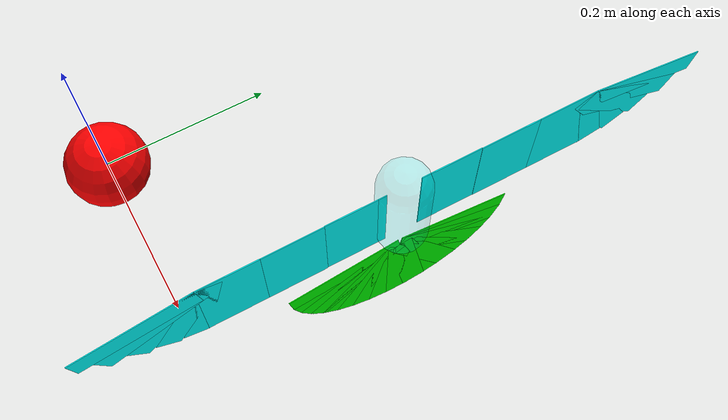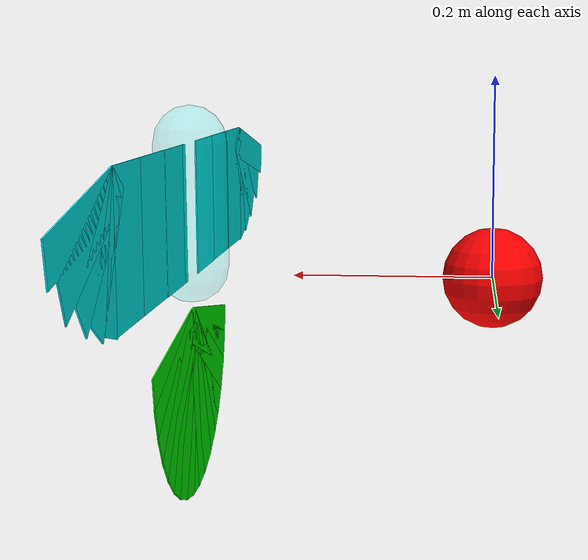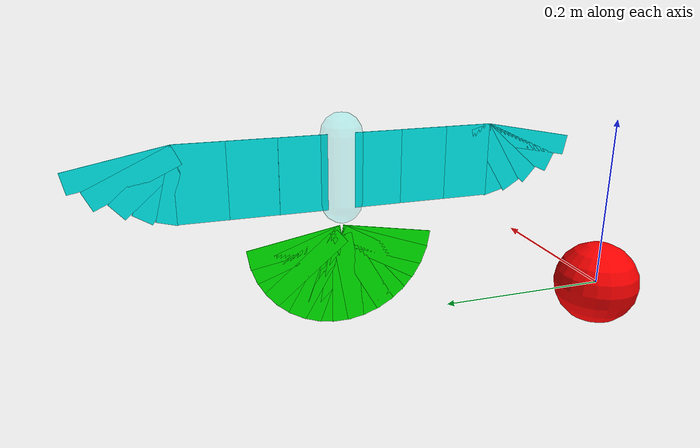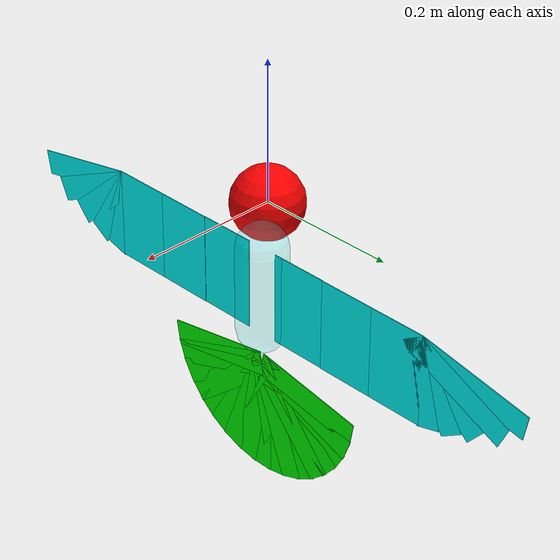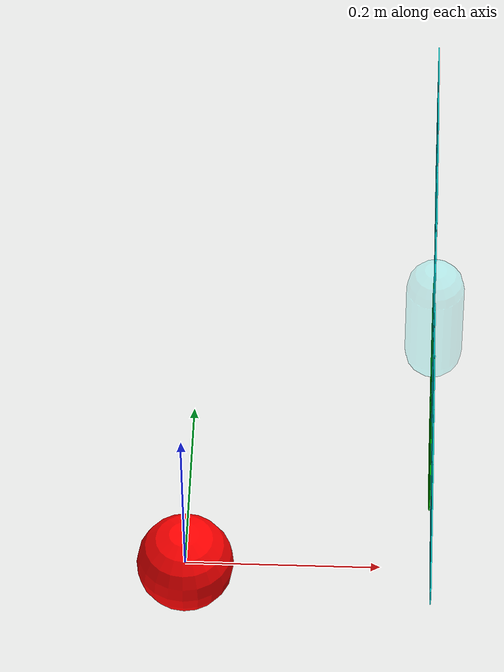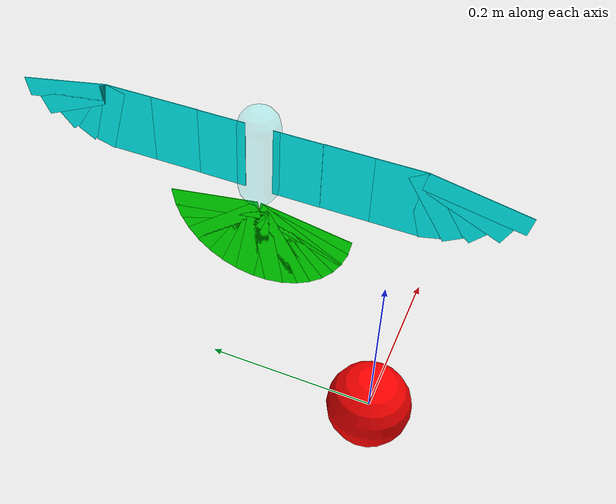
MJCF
<mujoco>
    <include file="pigeon.xml"/>
    <option timestep="0.01" integrator="RK4" gravity="0 0 -5" density="1.2" viscosity="0.00002" noslip_iterations="3" wind="0.0 0.0 0.0"/>

    <worldbody>
        <geom name="ground" type="plane" size="2 1.5 0.1" pos="2 1.5 -100" rgba="1 1 1 .3"/>
    </worldbody>

</mujoco>

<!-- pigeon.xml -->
<mujoco>

    <worldbody>
        <body name="base" pos=".25 .25 .15" euler="0 90 0">
            <joint type="slide" axis="0 0 1" armature="0.00001"/>
            <joint type="slide" axis="1 0 0" armature="0.00001"/>
            <joint type="slide" axis="0 1 0" armature="0.00001"/>
            <joint type="hinge" axis="0 1 0" armature="0.00001"/>
            <joint type="hinge" axis="1 0 0" armature="0.00001"/>
            <joint type="hinge" axis="0 0 1" armature="0.00001"/>
            <geom type="capsule" size=".03" fromto="0 0 0 .1 0 0"
            mass=".05" rgba="0 1 1 .2"/>
            <body name="wing_1_1" pos="0 .02 0" gravcomp="1">
                <joint name="AoA" axis="0 1 0" armature="1"/>
                <joint name="sweep_angle" axis="0 0 1" armature="1"/>
                <joint name="flap_angle" axis="1 0 0" armature="1"/>
                <geom type="box" size=".055 .035 .0005" pos=".055 .035 0"
                    mass=".001" contype="0" conaffinity="0" rgba="0 1 1 1"/>
                <body name="wing_1_2" pos="0 .07 0" gravcomp="1">
                    <geom type="box" size=".055 .035 .0005" pos=".055 .035 .0005"
                        mass=".001" contype="0" conaffinity="0" rgba="0 1 1 1"/>
                    <body name="wing_1_3" pos="0 .07 0" gravcomp="1">
                        <geom type="box" size=".055 .035 .0005" pos=".055 .035 .0005"
                            mass=".001" contype="0" conaffinity="0" rgba="0 1 1 1"/>
                        <body name="wing_1_4" pos="0 .07 0" euler="0 0 15" gravcomp="1">
                            <geom type="box" size=".0535 .015 .0005" pos=".0535 -.015 .0005"
                                mass=".0002" contype="0" conaffinity="0" rgba="0 1 1 1"/>
                            <body name="wing_1_5" pos="0 0 0" euler="0 0 17" gravcomp="1">
                                <geom type="box" size=".0535 .015 .0005" pos=".0535 -.015 .0005"
                                    mass=".0002" contype="0" conaffinity="0" rgba="0 1 1 1"/>
                                <body name="wing_1_6" pos="0 0 0" euler="0 0 17" gravcomp="1">
                                    <geom type="box" size=".056 .015 .0005" pos=".056 -.015 .0005"
                                        mass=".0002" contype="0" conaffinity="0" rgba="0 1 1 1"/>
                                    <body name="wing_1_7" pos="0 0 0" euler="0 0 16" gravcomp="1">
                                        <geom type="box" size=".0635 .015 .0005" pos=".0635 -.015 .0005"
                                            mass=".0002" contype="0" conaffinity="0" rgba="0 1 1 1"/>
                                        <body name="wing_1_8" pos="0 0 0" euler="0 0 14" gravcomp="1">
                                            <geom type="box" size=".07 .015 .0005" pos=".07 -.015 .0005"
                                                mass=".0002" contype="0" conaffinity="0" rgba="0 1 1 1"/>
                                        </body>
                                    </body>
                                </body>
                            </body>
                        </body>
                    </body>
                </body>
            </body>

            <body name="wing_2_1" pos="0 -.02 0" gravcomp="1">
                <joint name="AoA2" axis="0 1 0"  armature="1"/>
                <joint name="sweep_angle2" axis="0 0 1"  armature="1"/>
                <joint name="flap_angle2" axis="1 0 0"  armature="1"/>
                <geom type="box" size=".055 .035 .0005" pos=".055 -.035 0"
                    mass=".001" contype="0" conaffinity="0" rgba="0 1 1 1"/>
                <body name="wing_2_2" pos="0 -.07 0" gravcomp="1">
                    <geom type="box" size=".055 .035 .0005" pos=".055 -.035 .0005"
                        mass=".001" contype="0" conaffinity="0" rgba="0 1 1 1"/>
                    <body name="wing_2_3" pos="0 -.07 0" gravcomp="1">
                        <geom type="box" size=".055 .035 .0005" pos=".055 -.035 .0005"
                            mass=".001" contype="0" conaffinity="0" rgba="0 1 1 1"/>
                        <body name="wing_2_4" pos="0 -.07 0" euler="0 0 -15" gravcomp="1">
                            <geom type="box" size=".0535 .015 .0005" pos=".0535 .015 .0005"
                                mass=".0002" contype="0" conaffinity="0" rgba="0 1 1 1"/>
                            <body name="wing_2_5" pos="0 0 0" euler="0 0 -17" gravcomp="1">
                                <geom type="box" size=".0535 .015 .0005" pos=".0535 .015 .0005"
                                    mass=".0002" contype="0" conaffinity="0" rgba="0 1 1 1"/>
                                <body name="wing_2_6" pos="0 0 0" euler="0 0 -17" gravcomp="1">
                                    <geom type="box" size=".056 .015 .0005" pos=".056 .015 .0005"
                                        mass=".0002" contype="0" conaffinity="0" rgba="0 1 1 1"/>
                                    <body name="wing_2_7" pos="0 0 0" euler="0 0 -16" gravcomp="1">
                                        <geom type="box" size=".0635 .015 .0005" pos=".0635 .015 .0005"
                                            mass=".0002" contype="0" conaffinity="0" rgba="0 1 1 1"/>
                                        <body name="wing_2_8" pos="0 0 0" euler="0 0 -14" gravcomp="1">
                                            <geom type="box" size=".07 .015 .0005" pos=".07 .015 .0005"
                                                mass=".0002" contype="0" conaffinity="0" rgba="0 1 1 1"/>
                                        </body>
                                    </body>
                                </body>
                            </body>
                        </body>
                    </body>
                </body>
            </body>

            <body name="tail" pos=".15 0 0">
                <joint name="tail_pitch" axis="0 1 0"  armature="1"/>
                <joint name="tail_roll" axis="1 0 0"  armature="1"/>
                <geom type="box" size=".07 .015 .0005" pos=".07 0 .0005"
                    contype="0" conaffinity="0" mass=".0005" rgba="0 1 0 1"/>
                <body name="tail_1" euler="0 0 10">
                    <geom type="box" size=".07 .015 .0005" pos=".07 0 .0005"
                        contype="0" conaffinity="0" mass=".0005" rgba="0 1 0 1"/>
                    <body name="tail_2" euler="0 0 10">
                        <geom type="box" size=".07 .015 .0005" pos=".07 0 .0005"
                            contype="0" conaffinity="0" mass=".0005" rgba="0 1 0 1"/>
                        <body name="tail_3" euler="0 0 10">
                            <geom type="box" size=".07 .015 .0005" pos=".07 0 .0005"
                                contype="0" conaffinity="0" mass=".0005" rgba="0 1 0 1"/>
                            <body name="tail_4" euler="0 0 10">
                                <geom type="box" size=".07 .015 .0005" pos=".07 0 .0005"
                                    contype="0" conaffinity="0" mass=".0005" rgba="0 1 0 1"/>
                                <body name="tail_5" euler="0 0 10">
                                    <geom type="box" size=".07 .015 .0005" pos=".07 0 .0005"
                                        contype="0" conaffinity="0" mass=".0005" rgba="0 1 0 1"/>
                                    <body name="tail_6" euler="0 0 10">
                                        <geom type="box" size=".07 .015 .0005" pos=".07 0 .0005"
                                            contype="0" conaffinity="0" mass=".0005" rgba="0 1 0 1"/>
                                        <body name="tail_7" euler="0 0 10">
                                            <geom type="box" size=".07 .015 .0005" pos=".07 0 .0005"
                                                contype="0" conaffinity="0" mass=".0005" rgba="0 1 0 1"/>
                                            <body name="tail_8" euler="0 0 10">
                                                <geom type="box" size=".07 .015 .0005" pos=".07 0 .0005"
                                                    contype="0" conaffinity="0" mass=".0005" rgba="0 1 0 1"/>
                                            </body>
                                        </body>
                                    </body>
                                </body>
                            </body>
                        </body>
                    </body>
                </body>

                <body name="tail_9" euler="0 0 -10">
                    <geom type="box" size=".07 .015 .0005" pos=".07 0 .0005"
                        contype="0" conaffinity="0" mass=".0005" rgba="0 1 0 1"/>
                    <body name="tail_10" euler="0 0 -10">
                        <geom type="box" size=".07 .015 .0005" pos=".07 0 .0005"
                            contype="0" conaffinity="0" mass=".0005" rgba="0 1 0 1"/>
                        <body name="tail_11" euler="0 0 -10">
                            <geom type="box" size=".07 .015 .0005" pos=".07 0 .0005"
                                contype="0" conaffinity="0" mass=".0005" rgba="0 1 0 1"/>
                            <body name="tail_12" euler="0 0 -10">
                                <geom type="box" size=".07 .015 .0005" pos=".07 0 .0005"
                                    contype="0" conaffinity="0" mass=".0005" rgba="0 1 0 1"/>
                                <body name="tail_13" euler="0 0 -10">
                                    <geom type="box" size=".07 .015 .0005" pos=".07 0 .0005"
                                        contype="0" conaffinity="0" mass=".0005" rgba="0 1 0 1"/>
                                    <body name="tail_14" euler="0 0 -10">
                                        <geom type="box" size=".07 .015 .0005" pos=".07 0 .0005"
                                            contype="0" conaffinity="0" mass=".0005" rgba="0 1 0 1"/>
                                        <body name="tail_15" euler="0 0 -10">
                                            <geom type="box" size=".07 .015 .0005" pos=".07 0 .0005"
                                                contype="0" conaffinity="0" mass=".0005" rgba="0 1 0 1"/>
                                            <body name="tail_16" euler="0 0 -10">
                                                <geom type="box" size=".07 .015 .0005" pos=".07 0 .0005"
                                                    contype="0" conaffinity="0" mass=".0005" rgba="0 1 0 1"/>
                                            </body>
                                        </body>
                                    </body>
                                </body>
                            </body>
                        </body>
                    </body>
                </body>
            </body>
        </body>
        <body name="red_marker" mocap="true" >
            <geom type="sphere" size="0.05" rgba="1 0 0 0.95"/>
        </body>
    </worldbody>

    <actuator>
        <position name="AoA" joint="AoA" kp="1000" dampratio=".5" ctrlrange="-.7 .7"/>
        <position name="sweep_angle" joint="sweep_angle" kp="1000" dampratio=".5" ctrlrange="-.7 .7"/>
        <position name="flap_angle" joint="flap_angle" kp="1000" dampratio=".5" ctrlrange="-1.5 1.5"/>
        <position name="AoA2" joint="AoA2" kp="1000" dampratio=".5" ctrlrange="-.7 .7"/>
        <position name="sweep_angle2" joint="sweep_angle2" kp="1000" dampratio=".5" ctrlrange="-.7 .7"/>
        <position name="flap_angle2" joint="flap_angle2" kp="1000" dampratio=".5" ctrlrange="-1.5 1.5"/>
        <position name="tail_pitch" joint="tail_pitch" kp="1000" dampratio="1" ctrlrange="-1.5 1.5"/>
        <position name="tail_roll" joint="tail_roll" kp="1000" dampratio="1" ctrlrange="-1 1"/>
    </actuator>

</mujoco>
